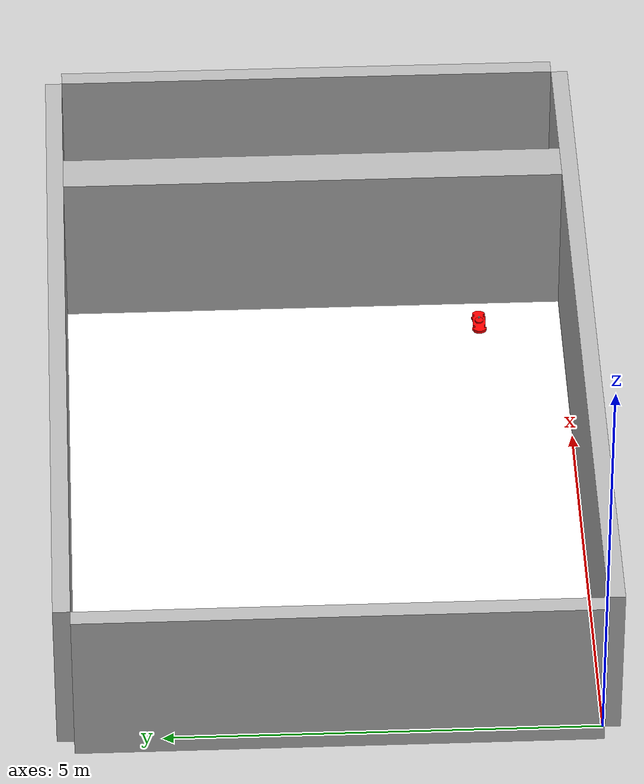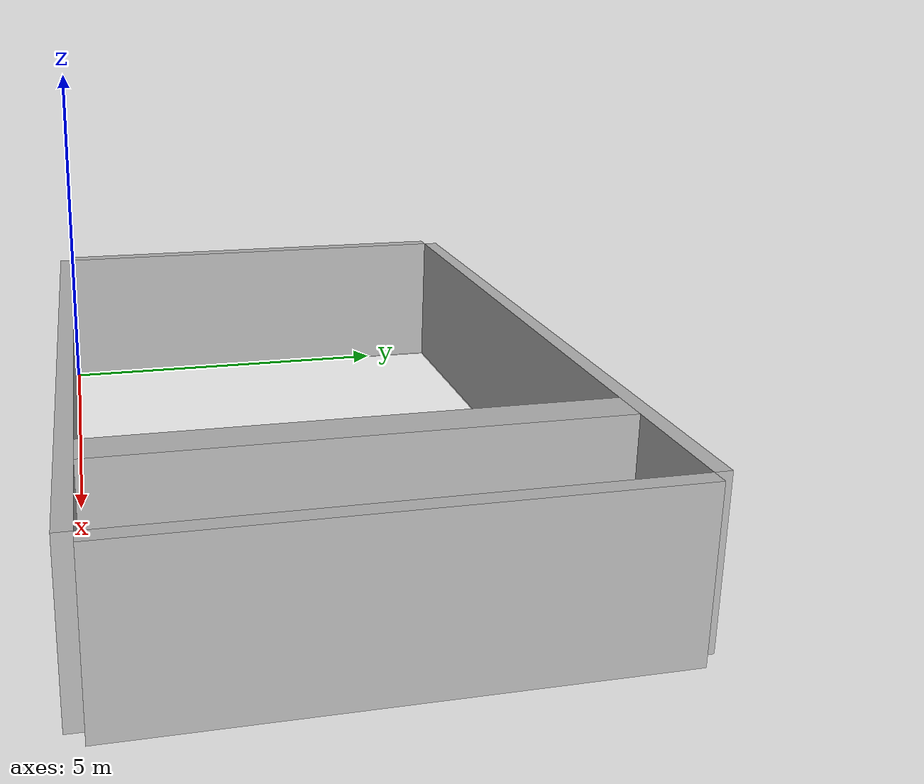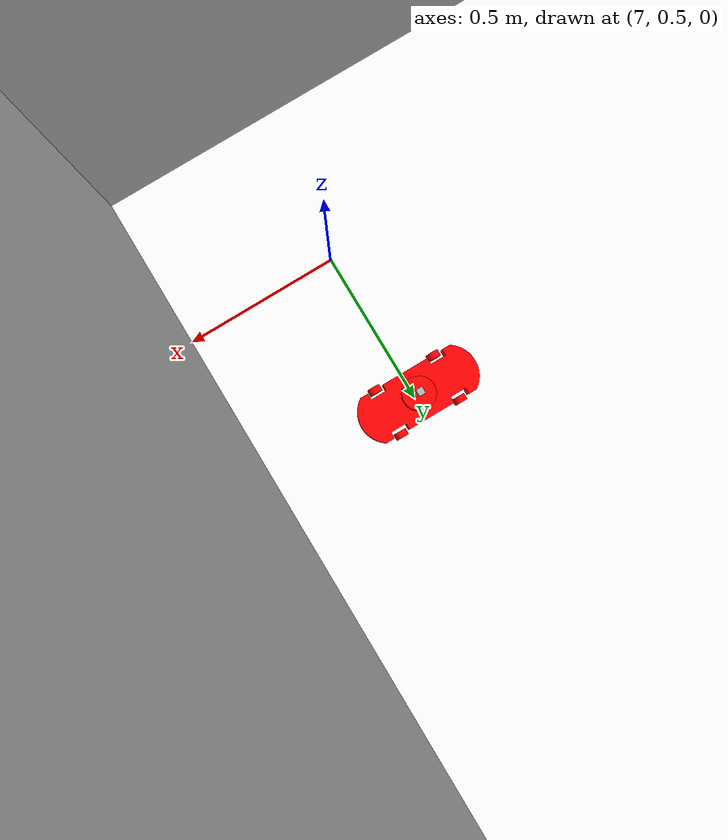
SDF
<sdf version="1.7">
 <world name="default">
  <physics name="default_physics" type="ode">
   <max_step_size>0.001</max_step_size>
   <real_time_factor>1.0</real_time_factor>
   <real_time_update_rate>1000</real_time_update_rate>
  </physics>
  <light type="directional" name="sun">
   <pose>0 0 10 0 0 0</pose>
   <diffuse>0.8 0.8 0.8 1</diffuse>
   <specular>0.2 0.2 0.2 1</specular>
   <direction>-0.5 0.5 -1</direction>
  </light>
  <include><uri>model://floor</uri></include>
  <include><uri>file://robot.sdf</uri><pose degrees="true">7 1 0.1 0 0 0</pose></include>
  <model name="bench">
   <static>true</static>
   <pose>7.75 3 1 0 0 0</pose>
   <link name="bench-link">
    <visual name="bench-visual"><geometry><box><size>0.5 6 2</size></box></geometry></visual>
    <collision name="bench-collision"><geometry><box><size>0.5 6 2</size></box></geometry></collision>
   </link>
  </model>
  <model name="wall-bottom">
   <static>true</static>
   <pose>4.75 -0.1 1 0 0 0</pose>
   <link name="link">
    <visual name="visual"><geometry><box><size>9.5 0.2 2</size></box></geometry></visual>
    <collision name="collision"><geometry><box><size>9.5 0.2 2</size></box></geometry></collision>
   </link>
  </model>
  <model name="wall-top">
   <static>true</static>
   <pose>4.75 6.1 1 0 0 0</pose>
   <link name="link">
    <visual name="visual"><geometry><box><size>9.5 0.2 2</size></box></geometry></visual>
    <collision name="collision"><geometry><box><size>9.5 0.2 2</size></box></geometry></collision>
   </link>
  </model>
  <model name="wall-left">
   <static>true</static>
   <pose>-0.1 3 1 0 0 0</pose>
   <link name="link">
    <visual name="visual"><geometry><box><size>0.2 6 2</size></box></geometry></visual>
    <collision name="collision"><geometry><box><size>0.2 6 2</size></box></geometry></collision>
   </link>
  </model>
  <model name="wall-right">
   <static>true</static>
   <pose>9.6 3 1 0 0 0</pose>
   <link name="link">
    <visual name="visual"><geometry><box><size>0.2 6 2</size></box></geometry></visual>
    <collision name="collision"><geometry><box><size>0.2 6 2</size></box></geometry></collision>
   </link>
  </model>
 </world>
</sdf>

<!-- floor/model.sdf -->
<sdf version="1.7">
    <model name="floor">
		<static>true</static>
		<pose>4.75 3 0 0 0 0</pose>
      <link name="link">

        <collision name="collision">
          <geometry>
            <plane>
              <normal>0 0 1</normal>
              <size>9.5 6</size>
            </plane>
          </geometry>
        </collision>

        <visual name="visual">
          <geometry>
            <plane>
              <normal>0 0 1</normal>
              <size>9.5 6</size>
            </plane>
			</geometry>

			<material>
				<ambient>1 1 1 1</ambient>
          		<diffuse>1 1 1 1</diffuse>
          		<specular>0.1 0.1 0.1 1</specular>

          <pbr>
            <metal>
              <albedo_map>model://floor/materials/textures/concrete-floor.jpg</albedo_map>
              <roughness>0.9</roughness>
              <metalness>0.5</metalness>
            </metal>
          </pbr>
			</material>

        </visual>

      </link>
    </model>
</sdf>

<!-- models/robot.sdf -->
<sdf version='1.11'>
  <model name='robotmodel'>
    <link name='robot-base'>
      <pose>0 0 0 0 0 0</pose>
      <visual name='robot-base-v'>
        <!-- mesh -->
        <geometry>
          <mesh>
            <uri>file://robot_base.stl</uri>
            <scale>0.001 0.001 0.001</scale>
          </mesh>
        </geometry>
        <material>
          <diffuse>1 0 0 1</diffuse>
          <ambient>1 0 0 1</ambient>
          <!-- specular -->
        </material>
      </visual>
      <collision name='robot-base-c'>
        <geometry>
          <mesh>
            <uri>file://robot_base.stl</uri>
            <scale>0.001 0.001 0.001</scale>
          </mesh>
        </geometry>
      </collision>
      <inertial auto='true'>
        <mass>1000</mass>
      </inertial>
    </link>

		<link name='wheel-frontleft'>
      <pose degrees='true'>0.1 0.075 0 90 0 0</pose>
      <visual name='robot-frontleft-v'>
        <!-- mesh -->
        <geometry>
					<cylinder>
						<radius>0.02</radius>
						<length>0.02</length>
					</cylinder>
        </geometry>
        <material>
          <diffuse>1 0 0 1</diffuse>
          <ambient>1 0 0 1</ambient>
          <!-- specular -->
        </material>
      </visual>
      <collision name='robot-frontleft-c'>
        <geometry>
					<!-- NOTE Different geometries for collision and visual -->
					<sphere>
						<radius>0.02</radius>
					</sphere>
        </geometry>
      </collision>
      <inertial auto='true'>
        <mass>1</mass>
      </inertial>
	</link>

	<link name='wheel-backleft'>
      <pose degrees='true'>-0.1 0.075 0 -90 0 0</pose>
      <visual name='robot-backleft-v'>
        <!-- mesh -->
        <geometry>
					<cylinder>
						<radius>0.02</radius>
						<length>0.02</length>
					</cylinder>
        </geometry>
        <material>
          <diffuse>1 0 0 1</diffuse>
          <ambient>1 0 0 1</ambient>
          <!-- specular -->
        </material>
      </visual>
      <collision name='robot-backleft-c'>
        <geometry>
					<cylinder>
						<radius>0.02</radius>
						<length>0.02</length>
					</cylinder>
        </geometry>
      </collision>
      <inertial auto='true'>
        <mass>1</mass>
      </inertial>
	</link>

	<link name='wheel-frontright'>
      <pose degrees='true'>0.1 -0.075 0 90 0 0</pose>
      <visual name='robot-frontright-v'>
        <!-- mesh -->
        <geometry>
			<cylinder>
				<radius>0.02</radius>
				<length>0.02</length>
			</cylinder>
        </geometry>
        <material>
          <diffuse>1 0 0 1</diffuse>
          <ambient>1 0 0 1</ambient>
          <!-- specular -->
        </material>
      </visual>
      <collision name='robot-frontright-c'>
        <geometry>
					<!-- NOTE Different geometries for collision and visual -->
					<sphere>
						<radius>0.02</radius>
					</sphere>
        </geometry>
      </collision>
      <inertial auto='true'>
        <mass>1</mass>
      </inertial>
	</link>

	<link name='wheel-backright'>
      <pose degrees='true'>-0.1 -0.075 0 -90 0 0</pose>
      <visual name='robot-backright-v'>
        <!-- mesh -->
        <geometry>
			<cylinder>
				<radius>0.02</radius>
				<length>0.02</length>
			</cylinder>
        </geometry>
        <material>
          <diffuse>1 0 0 1</diffuse>
          <ambient>1 0 0 1</ambient>
          <!-- specular -->
        </material>
      </visual>
      <collision name='robot-backright-c'>
        <geometry>
			<cylinder>
				<radius>0.02</radius>
				<length>0.02</length>
			</cylinder>
        </geometry>
      </collision>
      <inertial auto='true'>
        <mass>1</mass>
      </inertial>
	</link>

    <joint name='frontleft' type='ball'>
      <pose>0 0 0 0 0 0</pose>
      <parent>robot-base</parent>
      <child>wheel-frontleft</child>
      <axis>
        <xyz>0 0 1</xyz>
      </axis>
    </joint>

    <joint name='frontright' type='ball'>
      <pose>0 0 0 0 0 0</pose>
      <parent>robot-base</parent>
      <child>wheel-frontright</child>
      <axis>
        <xyz>0 0 1</xyz>
      </axis>
    </joint>

    <joint name='backleft' type='revolute'>
      <pose>0 0 0 0 0 0</pose>
      <parent>robot-base</parent>
      <child>wheel-backleft</child>
      <axis>
        <xyz>0 0 1</xyz>
      </axis>
    </joint>

    <joint name='backright' type='revolute'>
      <pose>0 0 0 0 0 0</pose>
      <parent>robot-base</parent>
      <child>wheel-backright</child>
      <axis>
        <xyz>0 0 1</xyz>
      </axis>
    </joint>

	<link name='robot-lidar'>
		<pose>0 0 0.05 0 0 0</pose>
      <visual name='robot-lidar-v'>
        <!-- mesh -->
        <geometry>
			<cylinder>
				<radius>0.05 </radius>
				<length>0.02 </length>
			</cylinder>
        </geometry>
        <material>
          <diffuse>1 0 0 1</diffuse>
          <ambient>1 0 0 1</ambient>
          <!-- specular -->
        </material>
      </visual>
      <collision name='robot-base-c'>
        <geometry>
			<cylinder>
				<radius>0.05 </radius>
				<length>0.02 </length>
			</cylinder>
        </geometry>
      </collision>

		<sensor name='robot-lidar' type='gpu_lidar'>
			<topic>lidar</topic>
			<update_rate>5</update_rate>
			<always_on>true</always_on>
			<visualize>true</visualize>
			<ray>
				<scan>
					<horizontal>
						<samples>360</samples>
						<resolution>1.00</resolution>
						<min_angle>0.000</min_angle>
						<max_angle>6.280</max_angle>
					</horizontal>
				</scan>
				<range>
					<min>0.12</min>
					<max>10</max>
					<resolution>0.01500</resolution>
				</range>
        <noise>
          <type>gaussian</type>
          <mean>0.0</mean>
          <stddev>0.01</stddev>
        </noise>
			</ray>
		</sensor>
	</link>

    <joint name='lidarjoint' type='fixed'>
      <pose>0 0 0 0 0 0</pose>
      <parent>robot-base</parent>
      <child>robot-lidar</child>
      <axis>
        <xyz>1 0 0</xyz>
      </axis>
    </joint>

    <plugin filename="gz-sim-diff-drive-system" name="gz::sim::systems::DiffDrive">
        <left_joint>backleft</left_joint>
        <right_joint>backright</right_joint>
        <wheel_separation>0.15</wheel_separation>
        <wheel_radius>0.02</wheel_radius>

		<!-- Only change these to the frames if we want to use the wheel odom as a sole source -->
		<frame_id>odom</frame_id>
		<child_frame_id>base_link</child_frame_id>
		<tf_topic>/tf</tf_topic>

        <max_linear_acceleration>1</max_linear_acceleration>
        <min_linear_acceleration>-1</min_linear_acceleration>
        <max_angular_acceleration>2</max_angular_acceleration>
        <min_angular_acceleration>-2</min_angular_acceleration>
        <max_linear_velocity>0.5</max_linear_velocity>
        <min_linear_velocity>-0.5</min_linear_velocity>
        <max_angular_velocity>1</max_angular_velocity>
        <min_angular_velocity>-1</min_angular_velocity>
      </plugin>

	<link name="imu">
		<pose>0 0 0.1 0 0 0 </pose>
		<visual name="imu-v">
			<geometry>
				<box><size>0.02 0.02 0.02</size></box>
			</geometry>
		</visual>
		<collision name="imu-c">
			<geometry>
				<box><size>0.02 0.02 0.02</size></box>
			</geometry>
		</collision>

		<sensor name="imu-sensor" type="imu">
			<topic>imu</topic>
			<update_rate>100</update_rate>
			<always_on>true</always_on>
			<visualize>true</visualize>
			<imu>
        <angular_velocity>
          <x>
            <noise type="gaussian">
              <mean>0.0</mean>
              <stddev>2e-4</stddev>
              <bias_mean>0.0000075</bias_mean>
              <bias_stddev>0.0000008</bias_stddev>
            </noise>
          </x>
          <y>
            <noise type="gaussian">
              <mean>0.0</mean>
              <stddev>2e-4</stddev>
              <bias_mean>0.0000075</bias_mean>
              <bias_stddev>0.0000008</bias_stddev>
            </noise>
          </y>
          <z>
            <noise type="gaussian">
              <mean>0.0</mean>
              <stddev>2e-4</stddev>
              <bias_mean>0.0000075</bias_mean>
              <bias_stddev>0.0000008</bias_stddev>
            </noise>
          </z>
        </angular_velocity>
        <linear_acceleration>
          <x>
            <noise type="gaussian">
              <mean>0.0</mean>
              <stddev>1.7e-2</stddev>
              <bias_mean>0.1</bias_mean>
              <bias_stddev>0.001</bias_stddev>
            </noise>
          </x>
          <y>
            <noise type="gaussian">
              <mean>0.0</mean>
              <stddev>1.7e-2</stddev>
              <bias_mean>0.1</bias_mean>
              <bias_stddev>0.001</bias_stddev>
            </noise>
          </y>
          <z>
            <noise type="gaussian">
              <mean>0.0</mean>
              <stddev>1.7e-2</stddev>
              <bias_mean>0.1</bias_mean>
              <bias_stddev>0.001</bias_stddev>
            </noise>
          </z>
        </linear_acceleration>
      </imu>
		</sensor>
	</link>

    <joint name='imujoint' type='fixed'>
      <pose>0 0 0 0 0 0</pose>
      <parent>robot-base</parent>
      <child>imu</child>
      <axis>
        <xyz>1 0 0</xyz>
      </axis>
    </joint>

  </model>
</sdf>
